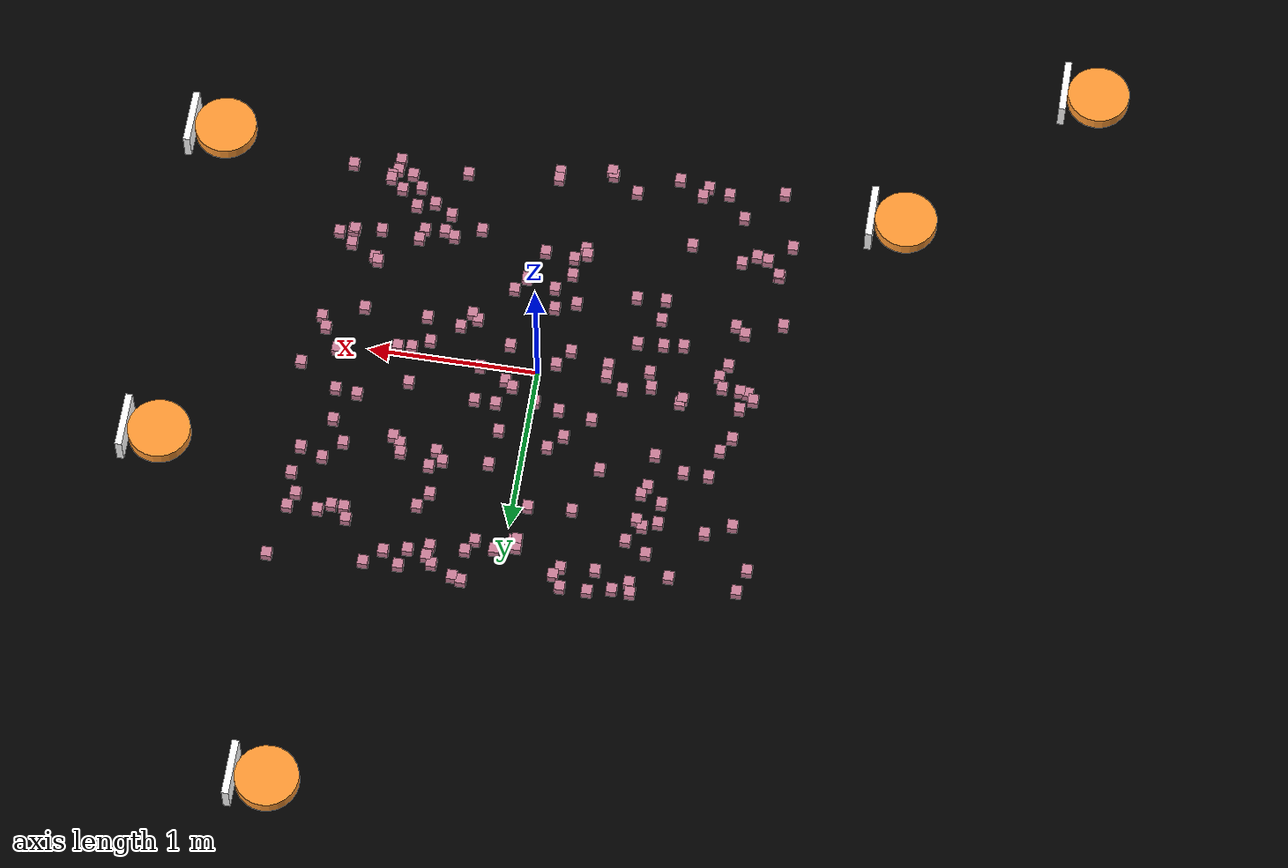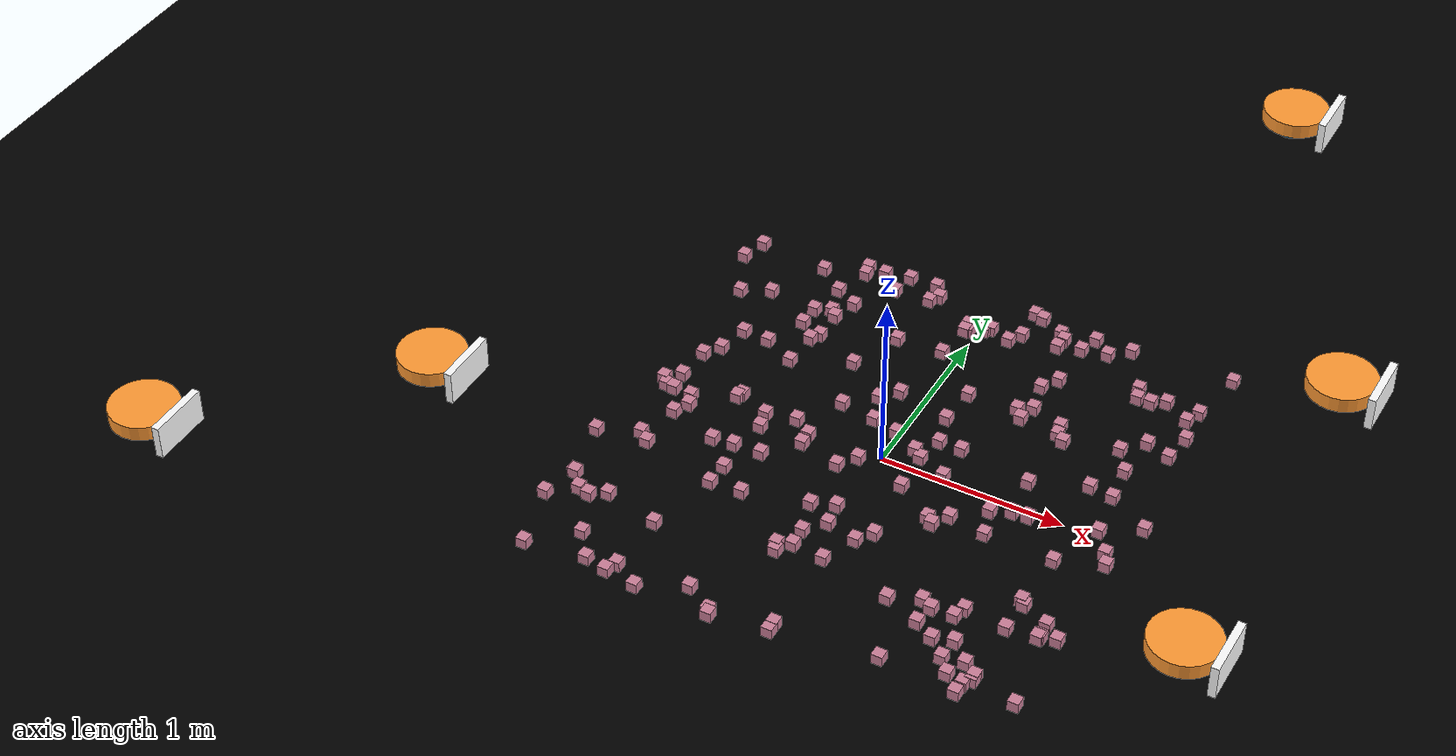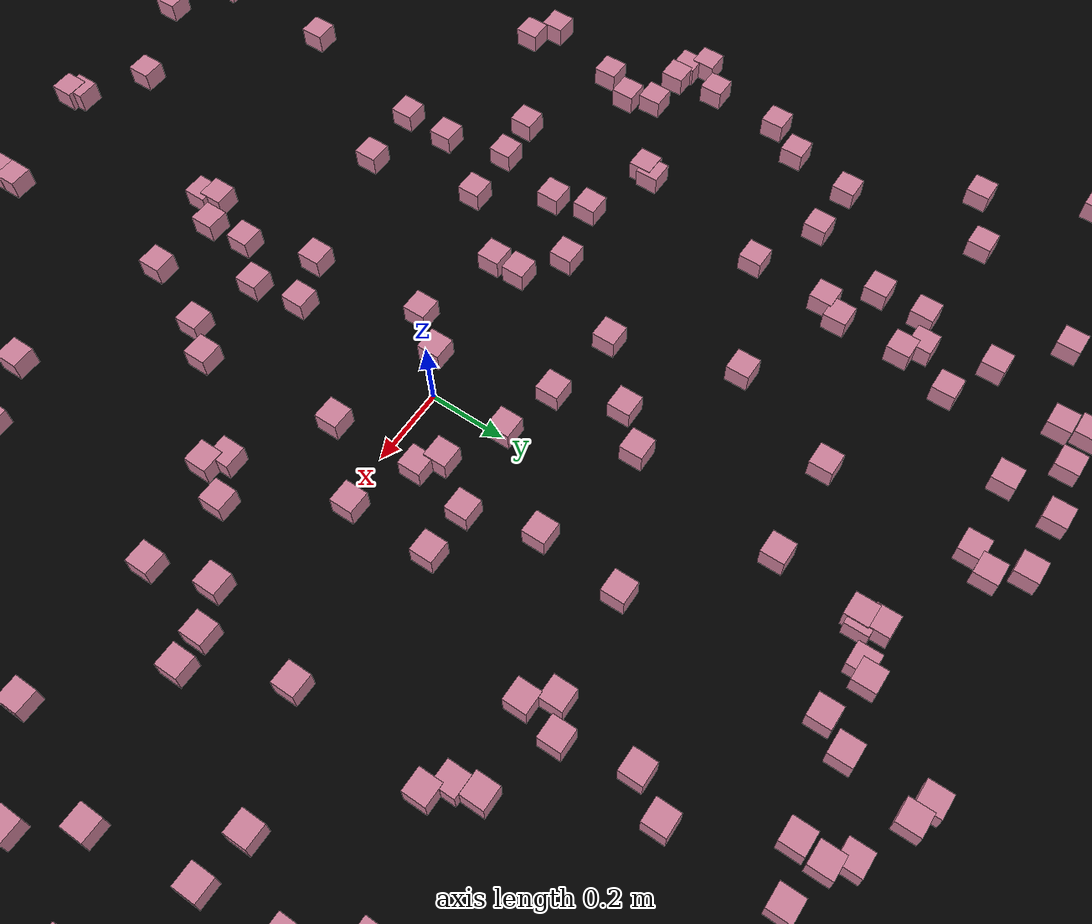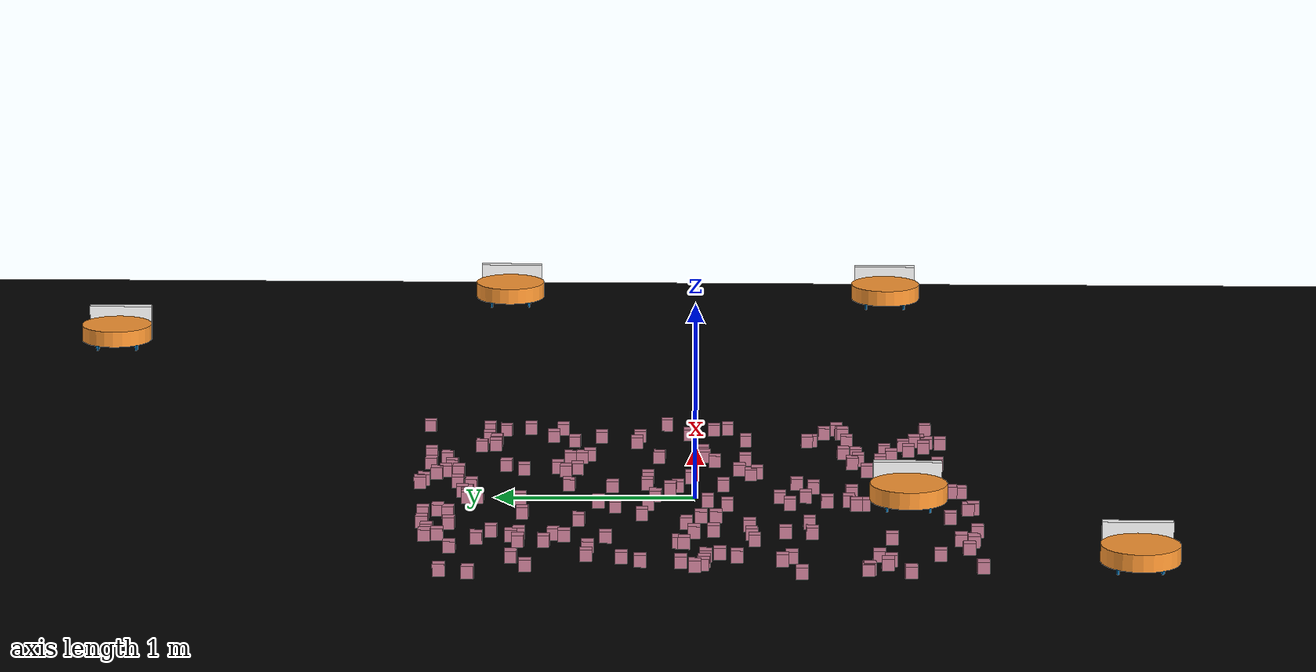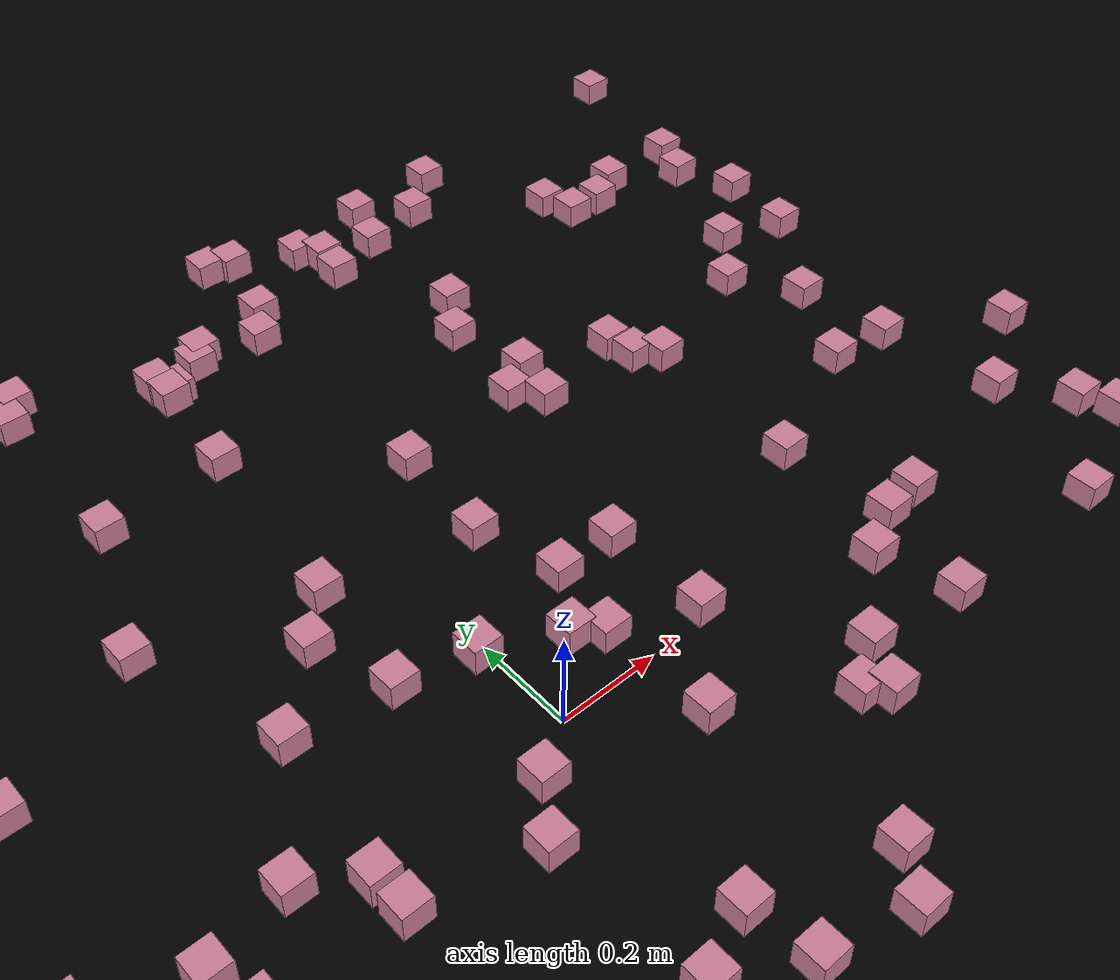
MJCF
<mujoco>
  <compiler meshdir="asset" texturedir="asset" angle="degree" coordinate="local"/>
  <option timestep="0.05" integrator="implicitfast"/>
  <statistic meansize=".05"/>

  <visual>
    <rgba haze="0.15 0.25 0.35 1"/>
    <quality shadowsize="4096"/>
    <map stiffness="700" shadowscale="0.5" fogstart="1" fogend="15" zfar="40" haze="1"/>
  </visual>

  <asset>
    <texture type="skybox" builtin="gradient" rgb1="0.3 0.5 0.7" rgb2="0 0 0" width="512" height="512"/>
    <texture name="texplane" type="2d" builtin="checker" rgb1="0 0 0" rgb2="0 0 0"
      width="512" height="512" mark="cross" markrgb=".8 .8 .8"/>

    <material name="matplane" reflectance="0.3" texture="texplane" texrepeat="10 10" texuniform="true"/>
  </asset>

  <worldbody>

    <geom name="ground" type="plane" size="0 0 1" pos="0 0 0" quat="1 0 0 0" material="matplane" condim="1"/>
    <camera name="topdown" pos="0 0 6" quat="1 0 0 0"/>

<body name="p0" pos="1.2961148175848587 0.8654420182854574 0.02192645132898443">
      <freejoint/>
      <geom type="box" size="0.03 0.03 0.03" rgba="0.8 0.5 0.6 1" friction="1.0 0.1 0.001" density="5"/>
</body>

<body name="p1" pos="-0.718384362881939 0.6883274389770997 0.020580947017390723">
      <freejoint/>
      <geom type="box" size="0.03 0.03 0.03" rgba="0.8 0.5 0.6 1" friction="1.0 0.1 0.001" density="5"/>
</body>

<body name="p2" pos="0.49237684663033865 -0.22405778636031726 0.02091286959444969">
      <freejoint/>
      <geom type="box" size="0.03 0.03 0.03" rgba="0.8 0.5 0.6 1" friction="1.0 0.1 0.001" density="5"/>
</body>

<body name="p3" pos="0.20715545095439913 0.24107667360421448 0.0203221170985577">
      <freejoint/>
      <geom type="box" size="0.03 0.03 0.03" rgba="0.8 0.5 0.6 1" friction="1.0 0.1 0.001" density="5"/>
</body>

<body name="p4" pos="1.1796023502810078 0.036761105469693245 0.022662895794275748">
      <freejoint/>
      <geom type="box" size="0.03 0.03 0.03" rgba="0.8 0.5 0.6 1" friction="1.0 0.1 0.001" density="5"/>
</body>

<body name="p5" pos="0.9419559878948953 -1.1759985084349454 0.023268254152379913">
      <freejoint/>
      <geom type="box" size="0.03 0.03 0.03" rgba="0.8 0.5 0.6 1" friction="1.0 0.1 0.001" density="5"/>
</body>

<body name="p6" pos="0.33212625433394494 0.2401018585121859 0.022702370573681508">
      <freejoint/>
      <geom type="box" size="0.03 0.03 0.03" rgba="0.8 0.5 0.6 1" friction="1.0 0.1 0.001" density="5"/>
</body>

<body name="p7" pos="-0.8485414818417151 0.0746138103521512 0.020627990465373856">
      <freejoint/>
      <geom type="box" size="0.03 0.03 0.03" rgba="0.8 0.5 0.6 1" friction="1.0 0.1 0.001" density="5"/>
</body>

<body name="p8" pos="1.305239467559609 -0.732704085381406 0.02154203652447774">
      <freejoint/>
      <geom type="box" size="0.03 0.03 0.03" rgba="0.8 0.5 0.6 1" friction="1.0 0.1 0.001" density="5"/>
</body>

<body name="p9" pos="-0.06360159930091336 1.1373547786584615 0.024072687034397876">
      <freejoint/>
      <geom type="box" size="0.03 0.03 0.03" rgba="0.8 0.5 0.6 1" friction="1.0 0.1 0.001" density="5"/>
</body>

<body name="p10" pos="0.3991932173858419 1.314342559807688 0.021243990814139697">
      <freejoint/>
      <geom type="box" size="0.03 0.03 0.03" rgba="0.8 0.5 0.6 1" friction="1.0 0.1 0.001" density="5"/>
</body>

<body name="p11" pos="-1.0775789434937166 -0.06037692682598861 0.020049394504921127">
      <freejoint/>
      <geom type="box" size="0.03 0.03 0.03" rgba="0.8 0.5 0.6 1" friction="1.0 0.1 0.001" density="5"/>
</body>

<body name="p12" pos="0.6978934798371168 0.6426210245786046 0.024093557492464886">
      <freejoint/>
      <geom type="box" size="0.03 0.03 0.03" rgba="0.8 0.5 0.6 1" friction="1.0 0.1 0.001" density="5"/>
</body>

<body name="p13" pos="-0.8028237548252458 1.0616146686033439 0.0243630424272614">
      <freejoint/>
      <geom type="box" size="0.03 0.03 0.03" rgba="0.8 0.5 0.6 1" friction="1.0 0.1 0.001" density="5"/>
</body>

<body name="p14" pos="-1.1966926088269263 0.06042159471565589 0.022442296876158792">
      <freejoint/>
      <geom type="box" size="0.03 0.03 0.03" rgba="0.8 0.5 0.6 1" friction="1.0 0.1 0.001" density="5"/>
</body>

<body name="p15" pos="1.0646266205508197 -1.1318597716862822 0.024369017119235104">
      <freejoint/>
      <geom type="box" size="0.03 0.03 0.03" rgba="0.8 0.5 0.6 1" friction="1.0 0.1 0.001" density="5"/>
</body>

<body name="p16" pos="1.217574844731108 -0.7625919591127739 0.022888167600204665">
      <freejoint/>
      <geom type="box" size="0.03 0.03 0.03" rgba="0.8 0.5 0.6 1" friction="1.0 0.1 0.001" density="5"/>
</body>

<body name="p17" pos="-0.6981249336214925 -0.2822229915217658 0.02354725661325462">
      <freejoint/>
      <geom type="box" size="0.03 0.03 0.03" rgba="0.8 0.5 0.6 1" friction="1.0 0.1 0.001" density="5"/>
</body>

<body name="p18" pos="0.8766687163485067 -1.0957603557313134 0.023855798164440764">
      <freejoint/>
      <geom type="box" size="0.03 0.03 0.03" rgba="0.8 0.5 0.6 1" friction="1.0 0.1 0.001" density="5"/>
</body>

<body name="p19" pos="-1.1165652961760264 0.8817374574226173 0.02074504120153393">
      <freejoint/>
      <geom type="box" size="0.03 0.03 0.03" rgba="0.8 0.5 0.6 1" friction="1.0 0.1 0.001" density="5"/>
</body>

<body name="p20" pos="-0.6753960907933915 0.9952462829879707 0.022873376461338326">
      <freejoint/>
      <geom type="box" size="0.03 0.03 0.03" rgba="0.8 0.5 0.6 1" friction="1.0 0.1 0.001" density="5"/>
</body>

<body name="p21" pos="1.2250567636210157 -0.75342175957577 0.022679821577946953">
      <freejoint/>
      <geom type="box" size="0.03 0.03 0.03" rgba="0.8 0.5 0.6 1" friction="1.0 0.1 0.001" density="5"/>
</body>

<body name="p22" pos="-0.3342175882333711 1.222642083223914 0.02126701211933947">
      <freejoint/>
      <geom type="box" size="0.03 0.03 0.03" rgba="0.8 0.5 0.6 1" friction="1.0 0.1 0.001" density="5"/>
</body>

<body name="p23" pos="-1.156832698283672 -0.42868061582487227 0.023908483060473874">
      <freejoint/>
      <geom type="box" size="0.03 0.03 0.03" rgba="0.8 0.5 0.6 1" friction="1.0 0.1 0.001" density="5"/>
</body>

<body name="p24" pos="-1.1248012615697554 0.3465814008998953 0.02115904197381768">
      <freejoint/>
      <geom type="box" size="0.03 0.03 0.03" rgba="0.8 0.5 0.6 1" friction="1.0 0.1 0.001" density="5"/>
</body>

<body name="p25" pos="-0.7601813076713766 0.43138280957117536 0.020152542001285974">
      <freejoint/>
      <geom type="box" size="0.03 0.03 0.03" rgba="0.8 0.5 0.6 1" friction="1.0 0.1 0.001" density="5"/>
</body>

<body name="p26" pos="-0.09938695337823011 -0.6617043462663929 0.020774925762126858">
      <freejoint/>
      <geom type="box" size="0.03 0.03 0.03" rgba="0.8 0.5 0.6 1" friction="1.0 0.1 0.001" density="5"/>
</body>

<body name="p27" pos="-0.35083169493135746 1.345974791095407 0.024914332071759006">
      <freejoint/>
      <geom type="box" size="0.03 0.03 0.03" rgba="0.8 0.5 0.6 1" friction="1.0 0.1 0.001" density="5"/>
</body>

<body name="p28" pos="0.21426954413440646 1.3912088272255199 0.0230429825456401">
      <freejoint/>
      <geom type="box" size="0.03 0.03 0.03" rgba="0.8 0.5 0.6 1" friction="1.0 0.1 0.001" density="5"/>
</body>

<body name="p29" pos="-0.6464156556365435 -0.09667020512139168 0.022810599561086376">
      <freejoint/>
      <geom type="box" size="0.03 0.03 0.03" rgba="0.8 0.5 0.6 1" friction="1.0 0.1 0.001" density="5"/>
</body>

<body name="p30" pos="1.1383313583701051 0.7416860015862796 0.022363355366622664">
      <freejoint/>
      <geom type="box" size="0.03 0.03 0.03" rgba="0.8 0.5 0.6 1" friction="1.0 0.1 0.001" density="5"/>
</body>

<body name="p31" pos="-0.3000764126440687 1.2748188302612884 0.022154768459956748">
      <freejoint/>
      <geom type="box" size="0.03 0.03 0.03" rgba="0.8 0.5 0.6 1" friction="1.0 0.1 0.001" density="5"/>
</body>

<body name="p32" pos="-1.0686872158124696 -0.89709076179592 0.020515507571461745">
      <freejoint/>
      <geom type="box" size="0.03 0.03 0.03" rgba="0.8 0.5 0.6 1" friction="1.0 0.1 0.001" density="5"/>
</body>

<body name="p33" pos="-0.17131671650733438 -0.1620424691546427 0.021614694116596972">
      <freejoint/>
      <geom type="box" size="0.03 0.03 0.03" rgba="0.8 0.5 0.6 1" friction="1.0 0.1 0.001" density="5"/>
</body>

<body name="p34" pos="0.8327473772980856 -0.7584623685250531 0.020109399914986614">
      <freejoint/>
      <geom type="box" size="0.03 0.03 0.03" rgba="0.8 0.5 0.6 1" friction="1.0 0.1 0.001" density="5"/>
</body>

<body name="p35" pos="0.8094477672894893 -0.8244966706895354 0.020783817432544753">
      <freejoint/>
      <geom type="box" size="0.03 0.03 0.03" rgba="0.8 0.5 0.6 1" friction="1.0 0.1 0.001" density="5"/>
</body>

<body name="p36" pos="1.281570658471932 1.0799792060856874 0.022709190131889195">
      <freejoint/>
      <geom type="box" size="0.03 0.03 0.03" rgba="0.8 0.5 0.6 1" friction="1.0 0.1 0.001" density="5"/>
</body>

<body name="p37" pos="1.0678880947538851 -0.25751781159257514 0.02133873096929008">
      <freejoint/>
      <geom type="box" size="0.03 0.03 0.03" rgba="0.8 0.5 0.6 1" friction="1.0 0.1 0.001" density="5"/>
</body>

<body name="p38" pos="0.6943343697868518 -0.25300628991975116 0.02019533133933901">
      <freejoint/>
      <geom type="box" size="0.03 0.03 0.03" rgba="0.8 0.5 0.6 1" friction="1.0 0.1 0.001" density="5"/>
</body>

<body name="p39" pos="-1.0848646737946037 0.5180081189188608 0.02139200636725121">
      <freejoint/>
      <geom type="box" size="0.03 0.03 0.03" rgba="0.8 0.5 0.6 1" friction="1.0 0.1 0.001" density="5"/>
</body>

<body name="p40" pos="-0.8030917575916123 -1.3637478429712293 0.021985334630871437">
      <freejoint/>
      <geom type="box" size="0.03 0.03 0.03" rgba="0.8 0.5 0.6 1" friction="1.0 0.1 0.001" density="5"/>
</body>

<body name="p41" pos="0.6854089858481154 1.2743698628472382 0.023218438300690678">
      <freejoint/>
      <geom type="box" size="0.03 0.03 0.03" rgba="0.8 0.5 0.6 1" friction="1.0 0.1 0.001" density="5"/>
</body>

<body name="p42" pos="-0.7508561080339099 1.3185617817438806 0.02078504132390216">
      <freejoint/>
      <geom type="box" size="0.03 0.03 0.03" rgba="0.8 0.5 0.6 1" friction="1.0 0.1 0.001" density="5"/>
</body>

<body name="p43" pos="0.1276988843430369 0.12413675945500358 0.023467843544800047">
      <freejoint/>
      <geom type="box" size="0.03 0.03 0.03" rgba="0.8 0.5 0.6 1" friction="1.0 0.1 0.001" density="5"/>
</body>

<body name="p44" pos="0.1849537522593041 -0.14382690564332257 0.023936302974754478">
      <freejoint/>
      <geom type="box" size="0.03 0.03 0.03" rgba="0.8 0.5 0.6 1" friction="1.0 0.1 0.001" density="5"/>
</body>

<body name="p45" pos="-1.3691879813866297 -0.5204665243619209 0.022921429233885012">
      <freejoint/>
      <geom type="box" size="0.03 0.03 0.03" rgba="0.8 0.5 0.6 1" friction="1.0 0.1 0.001" density="5"/>
</body>

<body name="p46" pos="-0.1498913225674221 -0.8456824906893207 0.02120266712791075">
      <freejoint/>
      <geom type="box" size="0.03 0.03 0.03" rgba="0.8 0.5 0.6 1" friction="1.0 0.1 0.001" density="5"/>
</body>

<body name="p47" pos="-0.16227463058963432 0.23176684456853924 0.021436829487834878">
      <freejoint/>
      <geom type="box" size="0.03 0.03 0.03" rgba="0.8 0.5 0.6 1" friction="1.0 0.1 0.001" density="5"/>
</body>

<body name="p48" pos="-0.9558846543356403 1.1869807097018454 0.020997851704818687">
      <freejoint/>
      <geom type="box" size="0.03 0.03 0.03" rgba="0.8 0.5 0.6 1" friction="1.0 0.1 0.001" density="5"/>
</body>

<body name="p49" pos="-0.4577144630679211 0.5710681337154326 0.02226668928387692">
      <freejoint/>
      <geom type="box" size="0.03 0.03 0.03" rgba="0.8 0.5 0.6 1" friction="1.0 0.1 0.001" density="5"/>
</body>

<body name="p50" pos="0.033406446047888894 1.1438009586458522 0.02023125253671733">
      <freejoint/>
      <geom type="box" size="0.03 0.03 0.03" rgba="0.8 0.5 0.6 1" friction="1.0 0.1 0.001" density="5"/>
</body>

<body name="p51" pos="-0.5467777879846487 -0.27304670276530985 0.023907951599485056">
      <freejoint/>
      <geom type="box" size="0.03 0.03 0.03" rgba="0.8 0.5 0.6 1" friction="1.0 0.1 0.001" density="5"/>
</body>

<body name="p52" pos="-1.1834436760406213 0.255870176065522 0.023725316150827878">
      <freejoint/>
      <geom type="box" size="0.03 0.03 0.03" rgba="0.8 0.5 0.6 1" friction="1.0 0.1 0.001" density="5"/>
</body>

<body name="p53" pos="-1.3502799138342234 -1.042172643371298 0.02466287888298411">
      <freejoint/>
      <geom type="box" size="0.03 0.03 0.03" rgba="0.8 0.5 0.6 1" friction="1.0 0.1 0.001" density="5"/>
</body>

<body name="p54" pos="0.49333003983366 0.6007313484264145 0.023091633069336613">
      <freejoint/>
      <geom type="box" size="0.03 0.03 0.03" rgba="0.8 0.5 0.6 1" friction="1.0 0.1 0.001" density="5"/>
</body>

<body name="p55" pos="1.2696524592563594 -0.09278996477718104 0.023943924046231083">
      <freejoint/>
      <geom type="box" size="0.03 0.03 0.03" rgba="0.8 0.5 0.6 1" friction="1.0 0.1 0.001" density="5"/>
</body>

<body name="p56" pos="0.8847059250366547 -0.9721801704325668 0.022055289201817714">
      <freejoint/>
      <geom type="box" size="0.03 0.03 0.03" rgba="0.8 0.5 0.6 1" friction="1.0 0.1 0.001" density="5"/>
</body>

<body name="p57" pos="-1.0974981485352908 -0.47453535286482806 0.02134590561372763">
      <freejoint/>
      <geom type="box" size="0.03 0.03 0.03" rgba="0.8 0.5 0.6 1" friction="1.0 0.1 0.001" density="5"/>
</body>

<body name="p58" pos="0.08395388054671327 -1.33321346235158 0.022023450742686947">
      <freejoint/>
      <geom type="box" size="0.03 0.03 0.03" rgba="0.8 0.5 0.6 1" friction="1.0 0.1 0.001" density="5"/>
</body>

<body name="p59" pos="-0.388649096317373 -1.2646250460010702 0.021539405425272794">
      <freejoint/>
      <geom type="box" size="0.03 0.03 0.03" rgba="0.8 0.5 0.6 1" friction="1.0 0.1 0.001" density="5"/>
</body>

<body name="p60" pos="-0.15334063709157064 -0.4755652515263783 0.024267002778730604">
      <freejoint/>
      <geom type="box" size="0.03 0.03 0.03" rgba="0.8 0.5 0.6 1" friction="1.0 0.1 0.001" density="5"/>
</body>

<body name="p61" pos="-0.8448071775663848 0.7325536478908972 0.02261919704500061">
      <freejoint/>
      <geom type="box" size="0.03 0.03 0.03" rgba="0.8 0.5 0.6 1" friction="1.0 0.1 0.001" density="5"/>
</body>

<body name="p62" pos="0.9883973292031087 -1.0724002761739566 0.020106532471620947">
      <freejoint/>
      <geom type="box" size="0.03 0.03 0.03" rgba="0.8 0.5 0.6 1" friction="1.0 0.1 0.001" density="5"/>
</body>

<body name="p63" pos="-1.2670040157957625 -0.00633492859824325 0.023362194409742843">
      <freejoint/>
      <geom type="box" size="0.03 0.03 0.03" rgba="0.8 0.5 0.6 1" friction="1.0 0.1 0.001" density="5"/>
</body>

<body name="p64" pos="0.7508682402316227 -0.046496444271448834 0.02094311044915477">
      <freejoint/>
      <geom type="box" size="0.03 0.03 0.03" rgba="0.8 0.5 0.6 1" friction="1.0 0.1 0.001" density="5"/>
</body>

<body name="p65" pos="-0.8606671978359964 0.04666387991325349 0.02220821841450031">
      <freejoint/>
      <geom type="box" size="0.03 0.03 0.03" rgba="0.8 0.5 0.6 1" friction="1.0 0.1 0.001" density="5"/>
</body>

<body name="p66" pos="0.0819370557253647 -0.7868404975161114 0.023267434586893967">
      <freejoint/>
      <geom type="box" size="0.03 0.03 0.03" rgba="0.8 0.5 0.6 1" friction="1.0 0.1 0.001" density="5"/>
</body>

<body name="p67" pos="-0.2175422292884155 0.3945607338423591 0.020604182126390095">
      <freejoint/>
      <geom type="box" size="0.03 0.03 0.03" rgba="0.8 0.5 0.6 1" friction="1.0 0.1 0.001" density="5"/>
</body>

<body name="p68" pos="-0.505650504338139 0.038554165814342234 0.022872708703981393">
      <freejoint/>
      <geom type="box" size="0.03 0.03 0.03" rgba="0.8 0.5 0.6 1" friction="1.0 0.1 0.001" density="5"/>
</body>

<body name="p69" pos="0.5194419084095825 0.7034314696346007 0.023099197561724995">
      <freejoint/>
      <geom type="box" size="0.03 0.03 0.03" rgba="0.8 0.5 0.6 1" friction="1.0 0.1 0.001" density="5"/>
</body>

<body name="p70" pos="-0.7752063891055235 -1.302341920294906 0.022214550123710472">
      <freejoint/>
      <geom type="box" size="0.03 0.03 0.03" rgba="0.8 0.5 0.6 1" friction="1.0 0.1 0.001" density="5"/>
</body>

<body name="p71" pos="0.6307520175003232 -0.8018403559494441 0.022617701257680506">
      <freejoint/>
      <geom type="box" size="0.03 0.03 0.03" rgba="0.8 0.5 0.6 1" friction="1.0 0.1 0.001" density="5"/>
</body>

<body name="p72" pos="-0.8429619201123846 0.8579920512587615 0.02238827349780452">
      <freejoint/>
      <geom type="box" size="0.03 0.03 0.03" rgba="0.8 0.5 0.6 1" friction="1.0 0.1 0.001" density="5"/>
</body>

<body name="p73" pos="0.5437812411774154 0.9655066965383345 0.02425349605949647">
      <freejoint/>
      <geom type="box" size="0.03 0.03 0.03" rgba="0.8 0.5 0.6 1" friction="1.0 0.1 0.001" density="5"/>
</body>

<body name="p74" pos="0.5475530744901793 1.244078420558112 0.022696560603913483">
      <freejoint/>
      <geom type="box" size="0.03 0.03 0.03" rgba="0.8 0.5 0.6 1" friction="1.0 0.1 0.001" density="5"/>
</body>

<body name="p75" pos="-0.09192849032860306 -0.7701359996541981 0.023125381312150584">
      <freejoint/>
      <geom type="box" size="0.03 0.03 0.03" rgba="0.8 0.5 0.6 1" friction="1.0 0.1 0.001" density="5"/>
</body>

<body name="p76" pos="0.4368109920531451 -0.3148495358553225 0.02360351403810022">
      <freejoint/>
      <geom type="box" size="0.03 0.03 0.03" rgba="0.8 0.5 0.6 1" friction="1.0 0.1 0.001" density="5"/>
</body>

<body name="p77" pos="1.048626548914123 -0.575336431988687 0.023811824807805106">
      <freejoint/>
      <geom type="box" size="0.03 0.03 0.03" rgba="0.8 0.5 0.6 1" friction="1.0 0.1 0.001" density="5"/>
</body>

<body name="p78" pos="-1.3922725451700324 1.0769600496422074 0.023536401260850104">
      <freejoint/>
      <geom type="box" size="0.03 0.03 0.03" rgba="0.8 0.5 0.6 1" friction="1.0 0.1 0.001" density="5"/>
</body>

<body name="p79" pos="-0.7375653195828051 1.2558567532019338 0.024087554209407773">
      <freejoint/>
      <geom type="box" size="0.03 0.03 0.03" rgba="0.8 0.5 0.6 1" friction="1.0 0.1 0.001" density="5"/>
</body>

<body name="p80" pos="-0.6270455753784138 -1.3879040710467165 0.02327882801757601">
      <freejoint/>
      <geom type="box" size="0.03 0.03 0.03" rgba="0.8 0.5 0.6 1" friction="1.0 0.1 0.001" density="5"/>
</body>

<body name="p81" pos="1.141762906861023 0.2920275302107065 0.02111533815486267">
      <freejoint/>
      <geom type="box" size="0.03 0.03 0.03" rgba="0.8 0.5 0.6 1" friction="1.0 0.1 0.001" density="5"/>
</body>

<body name="p82" pos="1.2192466160613296 -0.6666144126404205 0.02325517126199305">
      <freejoint/>
      <geom type="box" size="0.03 0.03 0.03" rgba="0.8 0.5 0.6 1" friction="1.0 0.1 0.001" density="5"/>
</body>

<body name="p83" pos="-0.031005576161017512 -0.4259300620344283 0.02327898656467884">
      <freejoint/>
      <geom type="box" size="0.03 0.03 0.03" rgba="0.8 0.5 0.6 1" friction="1.0 0.1 0.001" density="5"/>
</body>

<body name="p84" pos="-0.06042093318546815 1.0891022229939105 0.02411178405331899">
      <freejoint/>
      <geom type="box" size="0.03 0.03 0.03" rgba="0.8 0.5 0.6 1" friction="1.0 0.1 0.001" density="5"/>
</body>

<body name="p85" pos="-0.7177881494314082 0.8571191607977031 0.024040110059617373">
      <freejoint/>
      <geom type="box" size="0.03 0.03 0.03" rgba="0.8 0.5 0.6 1" friction="1.0 0.1 0.001" density="5"/>
</body>

<body name="p86" pos="0.4840299694398713 0.8741854207350883 0.02083090547521926">
      <freejoint/>
      <geom type="box" size="0.03 0.03 0.03" rgba="0.8 0.5 0.6 1" friction="1.0 0.1 0.001" density="5"/>
</body>

<body name="p87" pos="0.9345398021979587 1.1076681739274914 0.020387704937754984">
      <freejoint/>
      <geom type="box" size="0.03 0.03 0.03" rgba="0.8 0.5 0.6 1" friction="1.0 0.1 0.001" density="5"/>
</body>

<body name="p88" pos="0.3348546263978964 0.021614649688006082 0.023276271315410338">
      <freejoint/>
      <geom type="box" size="0.03 0.03 0.03" rgba="0.8 0.5 0.6 1" friction="1.0 0.1 0.001" density="5"/>
</body>

<body name="p89" pos="-0.13548616752839138 0.48035854949838175 0.02496045161137121">
      <freejoint/>
      <geom type="box" size="0.03 0.03 0.03" rgba="0.8 0.5 0.6 1" friction="1.0 0.1 0.001" density="5"/>
</body>

<body name="p90" pos="0.691091479288453 -0.8325211579943439 0.024171767524069885">
      <freejoint/>
      <geom type="box" size="0.03 0.03 0.03" rgba="0.8 0.5 0.6 1" friction="1.0 0.1 0.001" density="5"/>
</body>

<body name="p91" pos="0.47570859725839365 -0.8724539100269284 0.024956966820475747">
      <freejoint/>
      <geom type="box" size="0.03 0.03 0.03" rgba="0.8 0.5 0.6 1" friction="1.0 0.1 0.001" density="5"/>
</body>

<body name="p92" pos="1.0287461935788742 -1.2630124864775234 0.021716598887495574">
      <freejoint/>
      <geom type="box" size="0.03 0.03 0.03" rgba="0.8 0.5 0.6 1" friction="1.0 0.1 0.001" density="5"/>
</body>

<body name="p93" pos="0.7288823665260669 0.18656400591650146 0.022790039160680724">
      <freejoint/>
      <geom type="box" size="0.03 0.03 0.03" rgba="0.8 0.5 0.6 1" friction="1.0 0.1 0.001" density="5"/>
</body>

<body name="p94" pos="-0.08790471458973559 0.8723818750108365 0.02363083892877113">
      <freejoint/>
      <geom type="box" size="0.03 0.03 0.03" rgba="0.8 0.5 0.6 1" friction="1.0 0.1 0.001" density="5"/>
</body>

<body name="p95" pos="-0.646262919661875 1.3135942489446704 0.02134211517555042">
      <freejoint/>
      <geom type="box" size="0.03 0.03 0.03" rgba="0.8 0.5 0.6 1" friction="1.0 0.1 0.001" density="5"/>
</body>

<body name="p96" pos="-0.3600483298651418 0.25985833600371455 0.023351320442794803">
      <freejoint/>
      <geom type="box" size="0.03 0.03 0.03" rgba="0.8 0.5 0.6 1" friction="1.0 0.1 0.001" density="5"/>
</body>

<body name="p97" pos="0.6715594582602682 -0.9458308254112316 0.02286186115866881">
      <freejoint/>
      <geom type="box" size="0.03 0.03 0.03" rgba="0.8 0.5 0.6 1" friction="1.0 0.1 0.001" density="5"/>
</body>

<body name="p98" pos="-0.4961892541773123 -0.567815647841158 0.02270080364663423">
      <freejoint/>
      <geom type="box" size="0.03 0.03 0.03" rgba="0.8 0.5 0.6 1" friction="1.0 0.1 0.001" density="5"/>
</body>

<body name="p99" pos="0.22138414331009582 -0.5127226713951917 0.02355436230795068">
      <freejoint/>
      <geom type="box" size="0.03 0.03 0.03" rgba="0.8 0.5 0.6 1" friction="1.0 0.1 0.001" density="5"/>
</body>

<body name="p100" pos="0.42605145195553673 1.2038029276864148 0.024190951977377983">
      <freejoint/>
      <geom type="box" size="0.03 0.03 0.03" rgba="0.8 0.5 0.6 1" friction="1.0 0.1 0.001" density="5"/>
</body>

<body name="p101" pos="1.3418270850695113 1.3957612793611647 0.02012779706917671">
      <freejoint/>
      <geom type="box" size="0.03 0.03 0.03" rgba="0.8 0.5 0.6 1" friction="1.0 0.1 0.001" density="5"/>
</body>

<body name="p102" pos="0.6198124139735199 -1.236655780602412 0.02055532232714185">
      <freejoint/>
      <geom type="box" size="0.03 0.03 0.03" rgba="0.8 0.5 0.6 1" friction="1.0 0.1 0.001" density="5"/>
</body>

<body name="p103" pos="-1.2540198720360376 -1.3898543792212683 0.023236228100761692">
      <freejoint/>
      <geom type="box" size="0.03 0.03 0.03" rgba="0.8 0.5 0.6 1" friction="1.0 0.1 0.001" density="5"/>
</body>

<body name="p104" pos="0.7558634123138188 0.5441186549966517 0.022822732303027626">
      <freejoint/>
      <geom type="box" size="0.03 0.03 0.03" rgba="0.8 0.5 0.6 1" friction="1.0 0.1 0.001" density="5"/>
</body>

<body name="p105" pos="0.43477471148273317 1.2709537509508877 0.0239311598268554">
      <freejoint/>
      <geom type="box" size="0.03 0.03 0.03" rgba="0.8 0.5 0.6 1" friction="1.0 0.1 0.001" density="5"/>
</body>

<body name="p106" pos="-1.3522213220485344 1.2169573949964656 0.02254628699422928">
      <freejoint/>
      <geom type="box" size="0.03 0.03 0.03" rgba="0.8 0.5 0.6 1" friction="1.0 0.1 0.001" density="5"/>
</body>

<body name="p107" pos="1.1046503085794828 1.0753796323819498 0.02321330080194043">
      <freejoint/>
      <geom type="box" size="0.03 0.03 0.03" rgba="0.8 0.5 0.6 1" friction="1.0 0.1 0.001" density="5"/>
</body>

<body name="p108" pos="0.05799676167613255 1.1692327105802418 0.02039124208550029">
      <freejoint/>
      <geom type="box" size="0.03 0.03 0.03" rgba="0.8 0.5 0.6 1" friction="1.0 0.1 0.001" density="5"/>
</body>

<body name="p109" pos="1.119751353078592 0.4915051086022737 0.0222814628585175">
      <freejoint/>
      <geom type="box" size="0.03 0.03 0.03" rgba="0.8 0.5 0.6 1" friction="1.0 0.1 0.001" density="5"/>
</body>

<body name="p110" pos="-0.010902322740746762 -0.5553096960271215 0.022396678999810602">
      <freejoint/>
      <geom type="box" size="0.03 0.03 0.03" rgba="0.8 0.5 0.6 1" friction="1.0 0.1 0.001" density="5"/>
</body>

<body name="p111" pos="1.0354065651008981 0.6298224829262238 0.020942592623208484">
      <freejoint/>
      <geom type="box" size="0.03 0.03 0.03" rgba="0.8 0.5 0.6 1" friction="1.0 0.1 0.001" density="5"/>
</body>

<body name="p112" pos="-0.0432010043841502 1.0995258932307634 0.021143116986399667">
      <freejoint/>
      <geom type="box" size="0.03 0.03 0.03" rgba="0.8 0.5 0.6 1" friction="1.0 0.1 0.001" density="5"/>
</body>

<body name="p113" pos="0.956259094746438 1.0366681277652612 0.021326454190537178">
      <freejoint/>
      <geom type="box" size="0.03 0.03 0.03" rgba="0.8 0.5 0.6 1" friction="1.0 0.1 0.001" density="5"/>
</body>

<body name="p114" pos="-1.2943750112080306 -0.8451458921958467 0.024485723159571433">
      <freejoint/>
      <geom type="box" size="0.03 0.03 0.03" rgba="0.8 0.5 0.6 1" friction="1.0 0.1 0.001" density="5"/>
</body>

<body name="p115" pos="0.399927603808238 -0.2819336166680315 0.02085014564121261">
      <freejoint/>
      <geom type="box" size="0.03 0.03 0.03" rgba="0.8 0.5 0.6 1" friction="1.0 0.1 0.001" density="5"/>
</body>

<body name="p116" pos="1.3021088573745292 -1.1943430257636438 0.0220431538948042">
      <freejoint/>
      <geom type="box" size="0.03 0.03 0.03" rgba="0.8 0.5 0.6 1" friction="1.0 0.1 0.001" density="5"/>
</body>

<body name="p117" pos="0.44823031054584805 0.6585341847089605 0.021762540270355516">
      <freejoint/>
      <geom type="box" size="0.03 0.03 0.03" rgba="0.8 0.5 0.6 1" friction="1.0 0.1 0.001" density="5"/>
</body>

<body name="p118" pos="1.304518792049771 -0.163312316957974 0.022535656999448803">
      <freejoint/>
      <geom type="box" size="0.03 0.03 0.03" rgba="0.8 0.5 0.6 1" friction="1.0 0.1 0.001" density="5"/>
</body>

<body name="p119" pos="0.1597950975169684 -0.5958153885259941 0.02166592132878157">
      <freejoint/>
      <geom type="box" size="0.03 0.03 0.03" rgba="0.8 0.5 0.6 1" friction="1.0 0.1 0.001" density="5"/>
</body>

<body name="p120" pos="-0.22050120732346667 -1.3838669478751473 0.02487314550585165">
      <freejoint/>
      <geom type="box" size="0.03 0.03 0.03" rgba="0.8 0.5 0.6 1" friction="1.0 0.1 0.001" density="5"/>
</body>

<body name="p121" pos="-0.9379133038683807 0.5157212936288227 0.020461212631717823">
      <freejoint/>
      <geom type="box" size="0.03 0.03 0.03" rgba="0.8 0.5 0.6 1" friction="1.0 0.1 0.001" density="5"/>
</body>

<body name="p122" pos="-0.9303623473757174 -1.3364890437700145 0.02017051290017899">
      <freejoint/>
      <geom type="box" size="0.03 0.03 0.03" rgba="0.8 0.5 0.6 1" friction="1.0 0.1 0.001" density="5"/>
</body>

<body name="p123" pos="-1.268430553108736 0.8080591970215467 0.020072435807759095">
      <freejoint/>
      <geom type="box" size="0.03 0.03 0.03" rgba="0.8 0.5 0.6 1" friction="1.0 0.1 0.001" density="5"/>
</body>

<body name="p124" pos="-1.0398506848175157 -1.1934372544828393 0.020137931870627984">
      <freejoint/>
      <geom type="box" size="0.03 0.03 0.03" rgba="0.8 0.5 0.6 1" friction="1.0 0.1 0.001" density="5"/>
</body>

<body name="p125" pos="0.15961876137475173 0.41623806933303986 0.022301848006390054">
      <freejoint/>
      <geom type="box" size="0.03 0.03 0.03" rgba="0.8 0.5 0.6 1" friction="1.0 0.1 0.001" density="5"/>
</body>

<body name="p126" pos="-0.6668602397485391 -0.5798640380519887 0.021172430418848816">
      <freejoint/>
      <geom type="box" size="0.03 0.03 0.03" rgba="0.8 0.5 0.6 1" friction="1.0 0.1 0.001" density="5"/>
</body>

<body name="p127" pos="-1.0507355102710005 -0.1287045559871851 0.02363515507169863">
      <freejoint/>
      <geom type="box" size="0.03 0.03 0.03" rgba="0.8 0.5 0.6 1" friction="1.0 0.1 0.001" density="5"/>
</body>

<body name="p128" pos="0.8327994621852706 -0.038305900489971956 0.022083255533549638">
      <freejoint/>
      <geom type="box" size="0.03 0.03 0.03" rgba="0.8 0.5 0.6 1" friction="1.0 0.1 0.001" density="5"/>
</body>

<body name="p129" pos="-0.0992178868462461 -0.06468887541431889 0.022581128458023313">
      <freejoint/>
      <geom type="box" size="0.03 0.03 0.03" rgba="0.8 0.5 0.6 1" friction="1.0 0.1 0.001" density="5"/>
</body>

<body name="p130" pos="-0.40150681464330984 -0.033631899443446356 0.023561895086418108">
      <freejoint/>
      <geom type="box" size="0.03 0.03 0.03" rgba="0.8 0.5 0.6 1" friction="1.0 0.1 0.001" density="5"/>
</body>

<body name="p131" pos="1.059651569475982 -0.7808275536817422 0.02409781358477033">
      <freejoint/>
      <geom type="box" size="0.03 0.03 0.03" rgba="0.8 0.5 0.6 1" friction="1.0 0.1 0.001" density="5"/>
</body>

<body name="p132" pos="-1.3018867892865467 -0.8396988599711112 0.02040213756756116">
      <freejoint/>
      <geom type="box" size="0.03 0.03 0.03" rgba="0.8 0.5 0.6 1" friction="1.0 0.1 0.001" density="5"/>
</body>

<body name="p133" pos="-0.6618263280299367 -0.4493920344193023 0.021524640839941638">
      <freejoint/>
      <geom type="box" size="0.03 0.03 0.03" rgba="0.8 0.5 0.6 1" friction="1.0 0.1 0.001" density="5"/>
</body>

<body name="p134" pos="0.7793337666538198 -1.0058007361917898 0.023121561944383712">
      <freejoint/>
      <geom type="box" size="0.03 0.03 0.03" rgba="0.8 0.5 0.6 1" friction="1.0 0.1 0.001" density="5"/>
</body>

<body name="p135" pos="0.2680330758193512 1.3744675602744878 0.023461318962093445">
      <freejoint/>
      <geom type="box" size="0.03 0.03 0.03" rgba="0.8 0.5 0.6 1" friction="1.0 0.1 0.001" density="5"/>
</body>

<body name="p136" pos="1.0306459055121153 1.0346589887071667 0.02361029353061034">
      <freejoint/>
      <geom type="box" size="0.03 0.03 0.03" rgba="0.8 0.5 0.6 1" friction="1.0 0.1 0.001" density="5"/>
</body>

<body name="p137" pos="0.17664699439515275 1.1287764967700915 0.021564096134752558">
      <freejoint/>
      <geom type="box" size="0.03 0.03 0.03" rgba="0.8 0.5 0.6 1" friction="1.0 0.1 0.001" density="5"/>
</body>

<body name="p138" pos="-0.7479649843570072 0.6344592864470968 0.023239570606187684">
      <freejoint/>
      <geom type="box" size="0.03 0.03 0.03" rgba="0.8 0.5 0.6 1" friction="1.0 0.1 0.001" density="5"/>
</body>

<body name="p139" pos="-1.2309186080745853 -0.04697250597045799 0.021034740336727843">
      <freejoint/>
      <geom type="box" size="0.03 0.03 0.03" rgba="0.8 0.5 0.6 1" friction="1.0 0.1 0.001" density="5"/>
</body>

<body name="p140" pos="-0.16426681377453844 -0.8057445593806355 0.02384510729726448">
      <freejoint/>
      <geom type="box" size="0.03 0.03 0.03" rgba="0.8 0.5 0.6 1" friction="1.0 0.1 0.001" density="5"/>
</body>

<body name="p141" pos="0.650383641823034 -0.09777235470240542 0.02465503983801077">
      <freejoint/>
      <geom type="box" size="0.03 0.03 0.03" rgba="0.8 0.5 0.6 1" friction="1.0 0.1 0.001" density="5"/>
</body>

<body name="p142" pos="1.0124190796692814 0.30663074701343285 0.023620070003437268">
      <freejoint/>
      <geom type="box" size="0.03 0.03 0.03" rgba="0.8 0.5 0.6 1" friction="1.0 0.1 0.001" density="5"/>
</body>

<body name="p143" pos="1.0341902230598996 -1.1942883522016043 0.02058902912251273">
      <freejoint/>
      <geom type="box" size="0.03 0.03 0.03" rgba="0.8 0.5 0.6 1" friction="1.0 0.1 0.001" density="5"/>
</body>

<body name="p144" pos="1.3714205819985308 0.1534116985456102 0.02466397974461003">
      <freejoint/>
      <geom type="box" size="0.03 0.03 0.03" rgba="0.8 0.5 0.6 1" friction="1.0 0.1 0.001" density="5"/>
</body>

<body name="p145" pos="-1.0918256173030052 -0.21117729534686336 0.02296694777956818">
      <freejoint/>
      <geom type="box" size="0.03 0.03 0.03" rgba="0.8 0.5 0.6 1" friction="1.0 0.1 0.001" density="5"/>
</body>

<body name="p146" pos="-1.182489403012608 -0.05350330483078514 0.021067347449415994">
      <freejoint/>
      <geom type="box" size="0.03 0.03 0.03" rgba="0.8 0.5 0.6 1" friction="1.0 0.1 0.001" density="5"/>
</body>

<body name="p147" pos="-0.015041129978933254 0.19711904202078334 0.0232037820570464">
      <freejoint/>
      <geom type="box" size="0.03 0.03 0.03" rgba="0.8 0.5 0.6 1" friction="1.0 0.1 0.001" density="5"/>
</body>

<body name="p148" pos="0.08363686242910617 -1.2848322455789436 0.02292395670991226">
      <freejoint/>
      <geom type="box" size="0.03 0.03 0.03" rgba="0.8 0.5 0.6 1" friction="1.0 0.1 0.001" density="5"/>
</body>

<body name="p149" pos="-0.5082320200023912 1.3438417148580033 0.021032281650017647">
      <freejoint/>
      <geom type="box" size="0.03 0.03 0.03" rgba="0.8 0.5 0.6 1" friction="1.0 0.1 0.001" density="5"/>
</body>

<body name="p150" pos="0.787337914228718 1.3612847329994144 0.021785115500883738">
      <freejoint/>
      <geom type="box" size="0.03 0.03 0.03" rgba="0.8 0.5 0.6 1" friction="1.0 0.1 0.001" density="5"/>
</body>

<body name="p151" pos="-0.23357915588459122 -1.3575570635279492 0.02343801415671479">
      <freejoint/>
      <geom type="box" size="0.03 0.03 0.03" rgba="0.8 0.5 0.6 1" friction="1.0 0.1 0.001" density="5"/>
</body>

<body name="p152" pos="0.710894176924949 0.5816348434151482 0.02121889580588802">
      <freejoint/>
      <geom type="box" size="0.03 0.03 0.03" rgba="0.8 0.5 0.6 1" friction="1.0 0.1 0.001" density="5"/>
</body>

<body name="p153" pos="-1.151901417067478 -0.9510936618431829 0.023569111195132508">
      <freejoint/>
      <geom type="box" size="0.03 0.03 0.03" rgba="0.8 0.5 0.6 1" friction="1.0 0.1 0.001" density="5"/>
</body>

<body name="p154" pos="-0.3999362069881989 -0.10652217293947763 0.02373801936829103">
      <freejoint/>
      <geom type="box" size="0.03 0.03 0.03" rgba="0.8 0.5 0.6 1" friction="1.0 0.1 0.001" density="5"/>
</body>

<body name="p155" pos="-0.814609782942516 -0.29670997690076883 0.024062770363322033">
      <freejoint/>
      <geom type="box" size="0.03 0.03 0.03" rgba="0.8 0.5 0.6 1" friction="1.0 0.1 0.001" density="5"/>
</body>

<body name="p156" pos="0.22249597783521513 1.2008099052541517 0.023897095410256815">
      <freejoint/>
      <geom type="box" size="0.03 0.03 0.03" rgba="0.8 0.5 0.6 1" friction="1.0 0.1 0.001" density="5"/>
</body>

<body name="p157" pos="1.069548258070892 -0.597074103721397 0.020448367067484482">
      <freejoint/>
      <geom type="box" size="0.03 0.03 0.03" rgba="0.8 0.5 0.6 1" friction="1.0 0.1 0.001" density="5"/>
</body>

<body name="p158" pos="0.18054036897573345 0.6355686646705845 0.0237456388609194">
      <freejoint/>
      <geom type="box" size="0.03 0.03 0.03" rgba="0.8 0.5 0.6 1" friction="1.0 0.1 0.001" density="5"/>
</body>

<body name="p159" pos="1.0646642825032369 -1.1527040119036935 0.02253178096379063">
      <freejoint/>
      <geom type="box" size="0.03 0.03 0.03" rgba="0.8 0.5 0.6 1" friction="1.0 0.1 0.001" density="5"/>
</body>

<body name="p160" pos="0.584714077137658 1.3521625497357213 0.023533738703268307">
      <freejoint/>
      <geom type="box" size="0.03 0.03 0.03" rgba="0.8 0.5 0.6 1" friction="1.0 0.1 0.001" density="5"/>
</body>

<body name="p161" pos="-0.7639045540405546 -0.9667731528608529 0.023213899082195087">
      <freejoint/>
      <geom type="box" size="0.03 0.03 0.03" rgba="0.8 0.5 0.6 1" friction="1.0 0.1 0.001" density="5"/>
</body>

<body name="p162" pos="-0.7559161437147495 0.8940265933176783 0.023381142505936446">
      <freejoint/>
      <geom type="box" size="0.03 0.03 0.03" rgba="0.8 0.5 0.6 1" friction="1.0 0.1 0.001" density="5"/>
</body>

<body name="p163" pos="-1.2178977674882379 -0.9345843012692743 0.02450348766628717">
      <freejoint/>
      <geom type="box" size="0.03 0.03 0.03" rgba="0.8 0.5 0.6 1" friction="1.0 0.1 0.001" density="5"/>
</body>

<body name="p164" pos="-0.6690063307244578 -0.00025942329137240705 0.022979594742772065">
      <freejoint/>
      <geom type="box" size="0.03 0.03 0.03" rgba="0.8 0.5 0.6 1" friction="1.0 0.1 0.001" density="5"/>
</body>

<body name="p165" pos="1.246707661128792 0.9927262362904448 0.022970673049638318">
      <freejoint/>
      <geom type="box" size="0.03 0.03 0.03" rgba="0.8 0.5 0.6 1" friction="1.0 0.1 0.001" density="5"/>
</body>

<body name="p166" pos="-0.5341232772701568 1.2096572066119062 0.022783704010431168">
      <freejoint/>
      <geom type="box" size="0.03 0.03 0.03" rgba="0.8 0.5 0.6 1" friction="1.0 0.1 0.001" density="5"/>
</body>

<body name="p167" pos="-0.34146679968345306 0.8542330325173855 0.022415165785320785">
      <freejoint/>
      <geom type="box" size="0.03 0.03 0.03" rgba="0.8 0.5 0.6 1" friction="1.0 0.1 0.001" density="5"/>
</body>

<body name="p168" pos="1.272857386133257 0.6962071676329606 0.023299636933156346">
      <freejoint/>
      <geom type="box" size="0.03 0.03 0.03" rgba="0.8 0.5 0.6 1" friction="1.0 0.1 0.001" density="5"/>
</body>

<body name="p169" pos="0.17555240020312457 0.08738185645154783 0.020033223319582207">
      <freejoint/>
      <geom type="box" size="0.03 0.03 0.03" rgba="0.8 0.5 0.6 1" friction="1.0 0.1 0.001" density="5"/>
</body>

            <body name="robot_0" pos="2.0 1.0 0.5">
              <freejoint name="root_free_0"/>

              <!-- base -->
              <geom name="base_0"
                      type="cylinder"
                      pos="0 0 0.10"
                      size="0.18 0.04"
                      rgba="1.0 0.6 0.2 1"/>

              <body name="pusher_0" pos="0.20 0 0.1">
                  <geom type="box" size="0.02 0.16 0.09" rgba="1 1 1 1" />
              </body>

              <!-- left wheel-->
              <body name="left_wheel_0" pos="0 0.1 0.06" quat="0.707388 -0.706825 0 0">
                  <joint name="left_hinge_0" type="hinge" axis="0 0 1" damping="0.02"/>
                  <geom  name="left_geom_0" type="cylinder" size="0.06 0.005" rgba="0.1 0.6 0.9 1"/>
              </body>

              <!-- right wheel -->
              <body name="right_wheel_0" pos="0 -0.1 0.06" quat="0.707388 -0.706825 0 0">
                  <joint name="right_hinge_0" type="hinge" axis="0 0 1" damping="0.02"/>
                  <geom  name="right_geom_0"  type="cylinder" size="0.06 0.005" rgba="0.1 0.6 0.9 1"/>
              </body>

              <geom name="caster_0" type="sphere" pos="0.10 0 0.04" size="0.04" rgba="0.2 0.2 0.2 1"/>
            </body>

            <body name="robot_1" pos="-2.0 -1.0 0.5">
              <freejoint name="root_free_1"/>

              <!-- base -->
              <geom name="base_1"
                      type="cylinder"
                      pos="0 0 0.10"
                      size="0.18 0.04"
                      rgba="1.0 0.6 0.2 1"/>

              <body name="pusher_1" pos="0.20 0 0.1">
                  <geom type="box" size="0.02 0.16 0.09" rgba="1 1 1 1" />
              </body>

              <!-- left wheel-->
              <body name="left_wheel_1" pos="0 0.1 0.06" quat="0.707388 -0.706825 0 0">
                  <joint name="left_hinge_1" type="hinge" axis="0 0 1" damping="0.02"/>
                  <geom  name="left_geom_1" type="cylinder" size="0.06 0.005" rgba="0.1 0.6 0.9 1"/>
              </body>

              <!-- right wheel -->
              <body name="right_wheel_1" pos="0 -0.1 0.06" quat="0.707388 -0.706825 0 0">
                  <joint name="right_hinge_1" type="hinge" axis="0 0 1" damping="0.02"/>
                  <geom  name="right_geom_1" type="cylinder" size="0.06 0.005" rgba="0.1 0.6 0.9 1"/>
              </body>

              <geom name="caster_1" type="sphere" pos="0.10 0 0.04" size="0.04" rgba="0.2 0.2 0.2 1"/>
            </body>

            <body name="robot_2" pos="-3.0 -2.0 0.5">
              <freejoint name="root_free_2"/>

              <!-- base -->
              <geom name="base_2"
                      type="cylinder"
                      pos="0 0 0.10"
                      size="0.18 0.04"
                      rgba="1.0 0.6 0.2 1"/>

              <body name="pusher_2" pos="0.20 0 0.1">
                  <geom type="box" size="0.02 0.16 0.09" rgba="1 1 1 1" />
              </body>

              <!-- left wheel-->
              <body name="left_wheel_2" pos="0 0.1 0.06" quat="0.707388 -0.706825 0 0">
                  <joint name="left_hinge_2" type="hinge" axis="0 0 1" damping="0.02"/>
                  <geom  name="left_geom_2" type="cylinder" size="0.06 0.005" rgba="0.1 0.6 0.9 1"/>
              </body>

              <!-- right wheel -->
              <body name="right_wheel_2" pos="0 -0.1 0.06" quat="0.707388 -0.706825 0 0">
                  <joint name="right_hinge_2" type="hinge" axis="0 0 1" damping="0.02"/>
                  <geom  name="right_geom_2" type="cylinder" size="0.06 0.005" rgba="0.1 0.6 0.9 1"/>
              </body>

              <geom name="caster_2" type="sphere" pos="0.10 0 0.04" size="0.04" rgba="0.2 0.2 0.2 1"/>
            </body>

            <body name="robot_3" pos="2.0 -1.0 0.5">
              <freejoint name="root_free_3"/>

              <!-- base -->
              <geom name="base_3"
                      type="cylinder"
                      pos="0 0 0.10"
                      size="0.18 0.04"
                      rgba="1.0 0.6 0.2 1"/>

              <body name="pusher_3" pos="0.20 0 0.1">
                  <geom type="box" size="0.02 0.16 0.09" rgba="1 1 1 1" />
              </body>

              <!-- left wheel-->
              <body name="left_wheel_3" pos="0 0.1 0.06" quat="0.707388 -0.706825 0 0">
                  <joint name="left_hinge_3" type="hinge" axis="0 0 1" damping="0.02"/>
                  <geom  name="left_geom_3" type="cylinder" size="0.06 0.005" rgba="0.1 0.6 0.9 1"/>
              </body>

              <!-- right wheel -->
              <body name="right_wheel_3" pos="0 -0.1 0.06" quat="0.707388 -0.706825 0 0">
                  <joint name="right_hinge_3" type="hinge" axis="0 0 1" damping="0.02"/>
                  <geom  name="right_geom_3" type="cylinder" size="0.06 0.005" rgba="0.1 0.6 0.9 1"/>
              </body>

              <geom name="caster_3" type="sphere" pos="0.10 0 0.04" size="0.04" rgba="0.2 0.2 0.2 1"/>
            </body>

            <body name="robot_4" pos="1.0 3.0 0.5">
              <freejoint name="root_free_4"/>

              <!-- base -->
              <geom name="base_4"
                      type="cylinder"
                      pos="0 0 0.10"
                      size="0.18 0.04"
                      rgba="1.0 0.6 0.2 1"/>

              <body name="pusher_4" pos="0.20 0 0.1">
                  <geom type="box" size="0.02 0.16 0.09" rgba="1 1 1 1" />
              </body>

              <!-- left wheel-->
              <body name="left_wheel_4" pos="0 0.1 0.06" quat="0.707388 -0.706825 0 0">
                  <joint name="left_hinge_4" type="hinge" axis="0 0 1" damping="0.02"/>
                  <geom  name="left_geom_4" type="cylinder" size="0.06 0.005" rgba="0.1 0.6 0.9 1"/>
              </body>

              <!-- right wheel -->
              <body name="right_wheel_4" pos="0 -0.1 0.06" quat="0.707388 -0.706825 0 0">
                  <joint name="right_hinge_4" type="hinge" axis="0 0 1" damping="0.02"/>
                  <geom  name="right_geom_4" type="cylinder" size="0.06 0.005" rgba="0.1 0.6 0.9 1"/>
              </body>

              <geom name="caster_4" type="sphere" pos="0.10 0 0.04" size="0.04" rgba="0.2 0.2 0.2 1"/>
            </body>

  </worldbody>

<tendon>
  <fixed name="forward">
    <joint joint="left_hinge_0" coef=".5"/>
    <joint joint="right_hinge_0" coef=".5"/>
  </fixed>
  <fixed name="turn">
    <joint joint="left_hinge_0" coef="-.5"/>
    <joint joint="right_hinge_0" coef=".5"/>
  </fixed>
</tendon>

<actuator>
  <motor name="forward" tendon="forward" ctrlrange="-1. 1."/>
  <motor name="turn" tendon="turn" ctrlrange="-1. 1."/>
</actuator>

<sensor>
    <jointactuatorfrc name="right" joint="right_hinge_0"/>
    <jointactuatorfrc name="left" joint="left_hinge_0"/>
  </sensor>

</mujoco>
